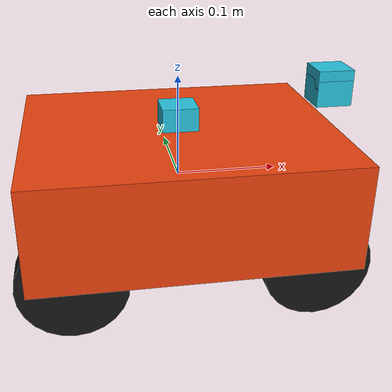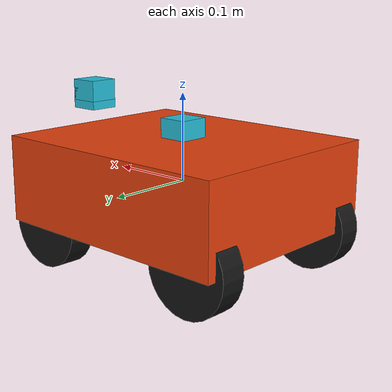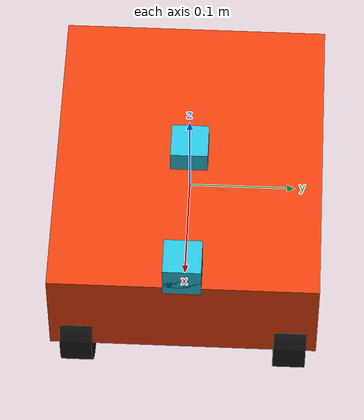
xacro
<?xml version="1.0"?>
<robot xmlns:xacro="http://www.ros.org/wiki/xacro" name="rescuebot">
  <!-- Estimated dimensions live here only until the assembled chassis is measured. -->
  <xacro:arg name="body_length" default="0.300"/>
  <xacro:arg name="body_width" default="0.250"/>
  <xacro:arg name="body_height" default="0.100"/>
  <xacro:arg name="wheel_radius" default="0.050"/>
  <xacro:arg name="wheel_width" default="0.030"/>
  <xacro:arg name="wheelbase" default="0.220"/>
  <xacro:arg name="track_width" default="0.200"/>
  <xacro:arg name="lidar_height" default="0.160"/>
  <xacro:arg name="ai_camera_height" default="0.180"/>
  <xacro:arg name="logitech_camera_height" default="0.190"/>

  <xacro:property name="body_length" value="$(arg body_length)"/>
  <xacro:property name="body_width" value="$(arg body_width)"/>
  <xacro:property name="body_height" value="$(arg body_height)"/>
  <xacro:property name="wheel_radius" value="$(arg wheel_radius)"/>
  <xacro:property name="wheel_width" value="$(arg wheel_width)"/>
  <xacro:property name="wheelbase" value="$(arg wheelbase)"/>
  <xacro:property name="track_width" value="$(arg track_width)"/>
  <xacro:property name="body_center_height" value="${wheel_radius + body_height / 2}"/>
  <xacro:property name="lidar_height" value="$(arg lidar_height)"/>
  <xacro:property name="ai_camera_height" value="$(arg ai_camera_height)"/>
  <xacro:property name="logitech_camera_height" value="$(arg logitech_camera_height)"/>

  <!-- odom -> base_link is supplied by the simulation bridge. -->

  <link name="base_link">
    <visual><geometry><box size="${body_length} ${body_width} ${body_height}"/></geometry><material name="orange"><color rgba="0.9 0.25 0.05 1"/></material></visual>
    <collision><geometry><box size="${body_length} ${body_width} ${body_height}"/></geometry></collision>
    <inertial><mass value="3.0"/><origin xyz="0 0 0"/><inertia ixx="0.03" ixy="0" ixz="0" iyy="0.04" iyz="0" izz="0.06"/></inertial>
  </link>

  <xacro:macro name="wheel" params="name x y">
    <link name="${name}_wheel_link">
      <visual><origin rpy="1.5708 0 0"/><geometry><cylinder radius="${wheel_radius}" length="${wheel_width}"/></geometry><material name="black"><color rgba="0.08 0.08 0.08 1"/></material></visual>
      <collision><origin rpy="1.5708 0 0"/><geometry><cylinder radius="${wheel_radius}" length="${wheel_width}"/></geometry></collision>
      <inertial><mass value="0.15"/><inertia ixx="0.0002" ixy="0" ixz="0" iyy="0.0002" iyz="0" izz="0.0002"/></inertial>
    </link>
    <joint name="${name}_wheel_joint" type="continuous">
      <parent link="base_link"/><child link="${name}_wheel_link"/>
      <origin xyz="${x} ${y} ${wheel_radius - body_center_height}" rpy="0 0 0"/><axis xyz="0 1 0"/>
    </joint>
  </xacro:macro>

  <xacro:wheel name="front_left" x="${wheelbase / 2}" y="${track_width / 2}"/>
  <xacro:wheel name="front_right" x="${wheelbase / 2}" y="${-track_width / 2}"/>
  <xacro:wheel name="rear_left" x="${-wheelbase / 2}" y="${track_width / 2}"/>
  <xacro:wheel name="rear_right" x="${-wheelbase / 2}" y="${-track_width / 2}"/>

  <xacro:macro name="sensor_frame" params="name xyz">
    <link name="${name}_link"><visual><geometry><box size="0.035 0.035 0.025"/></geometry><material name="sensor"><color rgba="0.15 0.75 0.85 1"/></material></visual></link>
    <joint name="${name}_joint" type="fixed"><parent link="base_link"/><child link="${name}_link"/><origin xyz="${xyz}" rpy="0 0 0"/></joint>
  </xacro:macro>
  <xacro:sensor_frame name="lidar" xyz="0 0 ${lidar_height - body_center_height}"/>
  <xacro:sensor_frame name="imu" xyz="0 0 ${0.08 - body_center_height}"/>
  <xacro:sensor_frame name="ai_camera" xyz="${body_length / 2} 0 ${ai_camera_height - body_center_height}"/>
  <xacro:sensor_frame name="logitech_camera" xyz="${body_length / 2} 0 ${logitech_camera_height - body_center_height}"/>
</robot>
